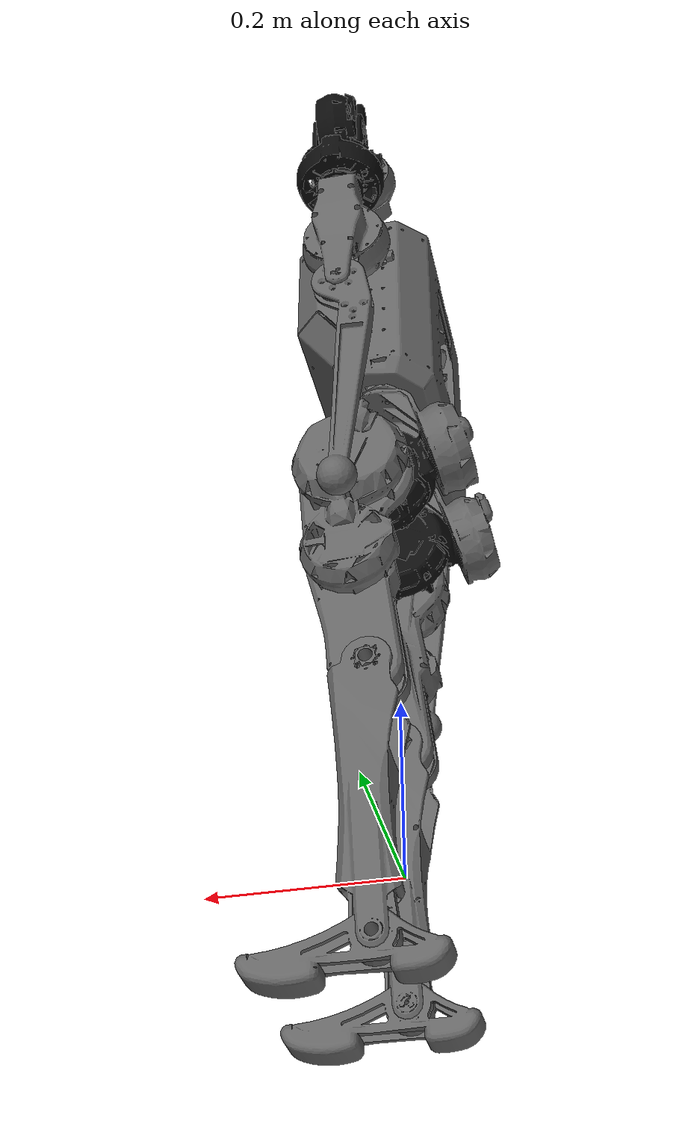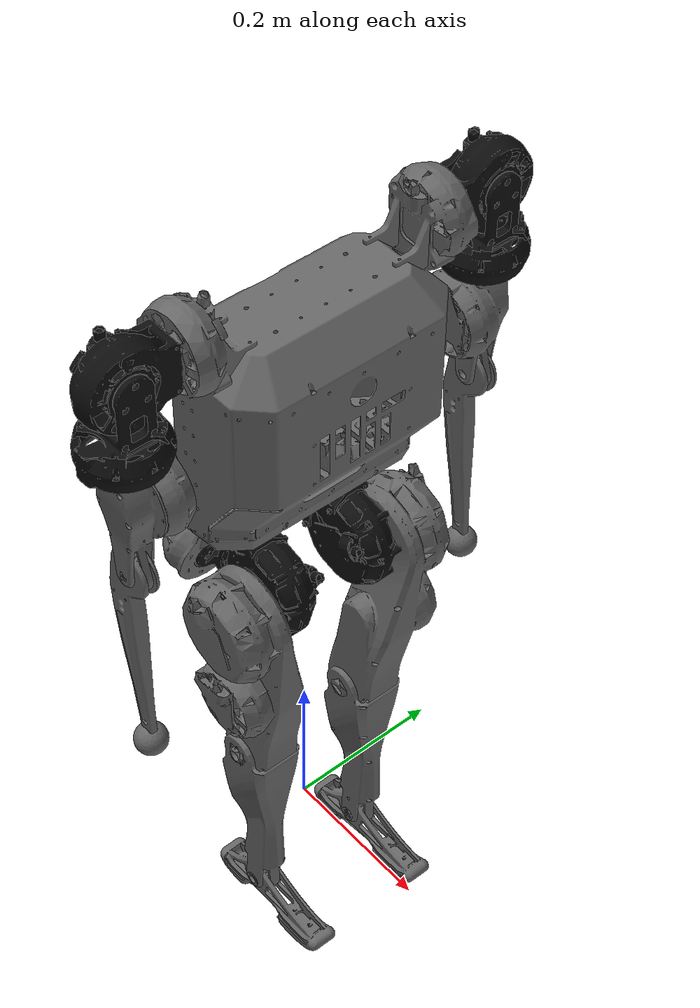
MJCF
<?xml version='1.0' encoding='utf-8'?>
<mujoco model="mit_humanoid">
  <compiler angle="radian" meshdir="assets" autolimits="true" />
  <default>
    <default class="mit_humanoid">
      <default class="visual">
        <geom group="2" type="mesh" density="0" material="aluminium" contype="0" conaffinity="0" />
      </default>
      <default class="collision">
        <geom group="3" rgba=".2 .6 .2 .3" contype="0" conaffinity="1" />
      </default>
    </default>
  </default>
  <asset>
    <material name="aluminium" rgba="0.4 0.4 0.4 1" metallic="0.6" roughness="0.5" />
    <material name="matte_black" rgba="0.05 0.05 0.05 1" metallic="0.3" roughness="1.0" />
    <mesh name="left_foot_scaled" file="left_foot_scaled.stl" />
    <mesh name="left_forearm_scaled" file="left_forearm_scaled.stl" />
    <mesh name="left_hip_abad_scaled" file="left_hip_abad_scaled.stl" />
    <mesh name="left_hip_yaw_scaled" file="left_hip_yaw_scaled.stl" />
    <mesh name="left_leg_lower_scaled" file="left_leg_lower_scaled.stl" />
    <mesh name="left_leg_upper_scaled" file="left_leg_upper_scaled.stl" />
    <mesh name="left_shoulder1_scaled" file="left_shoulder1_scaled.stl" />
    <mesh name="left_shoulder2_scaled" file="left_shoulder2_scaled.stl" />
    <mesh name="left_shoulder3_scaled" file="left_shoulder3_scaled.stl" />
    <mesh name="right_foot_scaled" file="right_foot_scaled.stl" />
    <mesh name="right_hip_abad_scaled" file="right_hip_abad_scaled.stl" />
    <mesh name="right_hip_yaw_scaled" file="right_hip_yaw_scaled.stl" />
    <mesh name="right_leg_lower_scaled" file="right_leg_lower_scaled.stl" />
    <mesh name="right_leg_upper_scaled" file="right_leg_upper_scaled.stl" />
    <mesh name="right_shoulder1_scaled" file="right_shoulder1_scaled.stl" />
    <mesh name="right_shoulder2_scaled" file="right_shoulder2_scaled.stl" />
    <mesh name="right_shoulder3_scaled" file="right_shoulder3_scaled.stl" />
    <mesh name="torso_scaled" file="torso_scaled.stl" />
  </asset>
  <worldbody>
    <body name="base" pos="0 0 0.61" childclass="mit_humanoid">
      <inertial pos="0.009896 0.004771 0.100522" mass="8.52" fullinertia="0.172699 0.105949 0.091906 0.001419 0.004023 -0.001672" />
      <freejoint name="floating_base_joint" />
      <geom name="base_visual" class="visual" mesh="torso_scaled" pos="-0.00565 0 -0.05735" quat="1 0 0 0" />
      <geom name="base_collision" class="collision" pos="0.023 0.0 0.08" quat="1 0 0 0" type="box" size="0.075 0.15 0.175" />
      <body name="right_hip_yaw" pos="-0.00565 -0.082 -0.05735" quat="0.996194694832 0 -0.0871557800056 0">
        <inertial pos="-0.064842 3.6e-05 -0.063090" mass="0.84563" fullinertia="0.0015373 0.0014252 0.0012028 -1.1e-06 0.0005578 -2.4e-06" />
        <joint name="right_hip_yaw_joint" axis="0 0 1" range="-6.28 6.28" />
        <geom name="right_hip_yaw_visual" class="visual" mesh="right_hip_yaw_scaled" pos="0 0 0" quat="1 0 0 0" />
        <body name="right_hip_abad" pos="-0.06435 0 -.07499" quat="0.976296040993 0 0.216439461148 0">
          <inertial pos="0.067232 0.013018 0.0001831" mass="1.20868" fullinertia="0.0017535 0.003338 0.0019927 6.3e-06 -0.000080 1.3e-05" />
          <joint name="right_hip_abad_joint" axis="1 0 0" range="-6.28 6.28" />
          <geom name="right_hip_abad_visual" class="visual" mesh="right_hip_abad_scaled" material="matte_black" pos="0 0 0" quat="1 0 0 0" />
          <body name="right_upper_leg" pos="0.07133 0.002 0.0" quat="0.991444886683 0 -0.130525999979 0">
            <inertial pos="0.0132054 -0.0269864 -0.096021" mass="2.64093" fullinertia="0.0243761 0.0259015 0.0038929 -9.96e-05 0.0006548 -0.0026713" />
            <joint name="right_hip_pitch_joint" axis="0 1 0" range="-6.28 6.28" />
            <geom name="right_upper_leg_visual" class="visual" mesh="right_leg_upper_scaled" pos="0.01283 0 -0.0174" quat="1 0 0 0" />
            <body name="right_lower_leg" pos="0.0 0.0 -0.2666" quat="1 0 0 0">
              <inertial pos="0.00528 -0.0014762 -0.13201" mass="0.35435" fullinertia="0.003051 0.003033 0.0002529 0.0 0.0000873 -3.93e-05" />
              <joint name="right_knee_joint" axis="0 1 0" range="0. 3." />
              <geom name="right_lower_leg_visual" class="visual" mesh="right_leg_lower_scaled" pos="0 0 0" quat="1 0 0 0" />
              <body name="right_foot" pos="0.0 0.0 -0.2785" quat="1 0 0 0">
                <inertial pos="0.022623 0.0 -0.012826" mass="0.280951" fullinertia="0.0000842 0.0007959 0.0007681 0.0 -0.0000488 0.0" />
                <joint name="right_ankle_joint" axis="0 1 0" range="-1.5 1.5" />
                <geom name="right_foot_visual" class="visual" mesh="right_foot_scaled" pos="0 0 0" quat="1 0 0 0" />
                <geom name="right_heel_collision" class="collision" pos="-0.05 0.0 -0.031" type="sphere" size="0.01" />
                <geom name="right_toe_collision" class="collision" pos="0.1 0.0 -0.031" type="sphere" size="0.01" />
                <body name="right_toe" pos="0.1 0 -.041" quat="1 0 0 0" />
                <body name="right_heel" pos="-0.05 0 -.041" quat="1 0 0 0" />
              </body>
            </body>
          </body>
        </body>
      </body>
      <body name="left_hip_yaw" pos="-0.00565 0.082 -0.05735" quat="0.996194694832 0 -0.0871557800056 0">
        <inertial pos="-0.064842 -3.6e-05 -0.063090" mass="0.84563" fullinertia="0.0015373 0.0014252 0.0012028 1.1e-06 0.0005578 2.4e-06" />
        <joint name="left_hip_yaw_joint" axis="0 0 -1" range="-6.28 6.28" />
        <geom name="left_hip_yaw_visual" class="visual" mesh="left_hip_yaw_scaled" pos="0 0 0" quat="1 0 0 0" />
        <body name="left_hip_abad" pos="-0.06435 0 -.07499" quat="0.976296040993 0 0.216439461148 0">
          <inertial pos="0.067232 -0.013018 0.0001831" mass="1.20868" fullinertia="0.0017535 0.003338 0.0019927 -6.3e-06 -0.000080 -1.3e-05" />
          <joint name="left_hip_abad_joint" axis="1 0 0" range="-6.28 6.28" />
          <geom name="left_hip_abad_visual" class="visual" mesh="left_hip_abad_scaled" material="matte_black" pos="0 0 0" quat="1 0 0 0" />
          <body name="left_upper_leg" pos="0.07133 -0.002 0.0" quat="0.991444886683 0 -0.130525999979 0">
            <inertial pos="0.0132054 0.0269864 -0.096021" mass="2.64093" fullinertia="0.0243761 0.0259015 0.0038929 9.96e-05 0.0006548 0.0026713" />
            <joint name="left_hip_pitch_joint" axis="0 1 0" range="-6.28 6.28" />
            <geom name="left_upper_leg_visual" class="visual" mesh="left_leg_upper_scaled" pos="0.01283 0 -0.0174" quat="1 0 0 0" />
            <body name="left_lower_leg" pos="0.0 0.0 -0.2666" quat="1 0 0 0">
              <inertial pos="0.00528 0.0014762 -0.13201" mass="0.35435" fullinertia="0.003051 0.003033 0.0002529 0.0 0.0000873 3.93e-05" />
              <joint name="left_knee_joint" axis="0 1 0" range="0. 3." />
              <geom name="left_lower_leg_visual" class="visual" mesh="left_leg_lower_scaled" pos="0 0 0" quat="1 0 0 0" />
              <body name="left_foot" pos="0.0 0.0 -0.2785" quat="1 0 0 0">
                <inertial pos="0.022623 0.0 -0.012826" mass="0.280951" fullinertia="0.0000842 0.0007959 0.0007681 0.0 -0.0000488 0.0" />
                <joint name="left_ankle_joint" axis="0 1 0" range="-1.5 1.5" />
                <geom name="left_foot_visual" class="visual" mesh="left_foot_scaled" pos="0 0 0" quat="1 0 0 0" />
                <geom name="left_heel_collision" class="collision" pos="-0.05 0.0 -0.031" type="sphere" size="0.01" />
                <geom name="left_toe_collision" class="collision" pos="0.1 0.0 -0.031" type="sphere" size="0.01" />
                <body name="left_toe" pos="0.1 0 -.041" quat="1 0 0 0" />
                <body name="left_heel" pos="-0.05 0 -.041" quat="1 0 0 0" />
              </body>
            </body>
          </body>
        </body>
      </body>
      <body name="right_shoulder" pos="0.01346 -0.17608 0.24657" quat="1 0 0 0">
        <inertial pos="0.009265 -0.052623 -0.0001249" mass="0.788506" fullinertia="0.0013678 0.0007392 0.000884 -2.66e-05 0.0000021 1.2e-06" />
        <joint name="right_arm_pitch" axis="0 1 0" range="-6.28 6.28" />
        <geom name="right_shoulder_visual" class="visual" mesh="right_shoulder1_scaled" material="matte_black" pos="0 0 0" quat="1 0 0 0" />
        <body name="right_shoulder_2" pos="0 -.05760 0" quat="1 0 0 0">
          <inertial pos="0.0006041 -0.0001221 -0.082361" mass="0.80125" fullinertia="0.0011524 0.0011921 0.0012386 -7e-07 0.0000396 -1.4e-06" />
          <joint name="right_shoulder_abad" axis="1 0 0" range="-6.28 6.28" />
          <geom name="right_shoulder_2_visual" class="visual" mesh="right_shoulder2_scaled" material="matte_black" pos="0 0 0" quat="1 0 0 0" />
          <body name="right_upper_arm" pos="0 0 -.10250" quat="1 0 0 0">
            <inertial pos="0.0001703 0.016797 -0.060" mass="0.905588" fullinertia="0.0012713 0.0017477 0.0008191 -1e-06 -0.000008 2.25e-05" />
            <joint name="right_shoulder_yaw" axis="0 0 1" range="-6.28 6.28" />
            <geom name="right_upper_arm_visual" class="visual" mesh="right_shoulder3_scaled" pos="0 0 0" quat="1 0 0 0" />
            <body name="right_lower_arm" pos="0 0 -.15750" quat="1 0 0 0">
              <inertial pos="-0.0059578 -0.000111 -0.0426735" mass="0.34839" fullinertia="0.001570 0.0016167 0.0000619 -2e-07 0.0000335 -3e-06" />
              <joint name="right_elbow" axis="0 1 0" range="-6.28 6.28" />
              <geom name="right_lower_arm_visual" class="visual" mesh="left_forearm_scaled" pos="0 0 0" quat="1 0 0 0" />
            </body>
          </body>
        </body>
      </body>
      <body name="left_shoulder" pos="0.01346 0.17608 0.24657" quat="1 0 0 0">
        <inertial pos="0.009265 0.052623 -0.0001249" mass="0.788506" fullinertia="0.0013678 0.0007392 0.000884 2.66e-05 0.0000021 -1.2e-06" />
        <joint name="left_arm_pitch" axis="0 1 0" range="-6.28 6.28" />
        <geom name="left_shoulder_visual" class="visual" mesh="left_shoulder1_scaled" material="matte_black" pos="0 0 0" quat="1 0 0 0" />
        <body name="left_shoulder_2" pos="0 .05760 0" quat="1 0 0 0">
          <inertial pos="0.0006041 0.0001221 -0.082361" mass="0.80125" fullinertia="0.0011524 0.0011921 0.0012386 7e-07 0.0000396 1.4e-06" />
          <joint name="left_shoulder_abad" axis="1 0 0" range="-6.28 6.28" />
          <geom name="left_shoulder_2_visual" class="visual" mesh="left_shoulder2_scaled" material="matte_black" pos="0 0 0" quat="1 0 0 0" />
          <body name="left_upper_arm" pos="0 0 -.10250" quat="1 0 0 0">
            <inertial pos="0.0001703 -0.016797 -0.060" mass="0.905588" fullinertia="0.0012713 0.0017477 0.0008191 1e-06 -0.000008 -2.25e-05" />
            <joint name="left_shoulder_yaw" axis="0 0 -1" range="-6.28 6.28" />
            <geom name="left_upper_arm_visual" class="visual" mesh="left_shoulder3_scaled" pos="0 0 0" quat="1 0 0 0" />
            <body name="left_lower_arm" pos="0 0 -.15750" quat="1 0 0 0">
              <inertial pos="-0.0059578 0.000111 -0.0426735" mass="0.34839" fullinertia="0.001570 0.0016167 0.0000619 2e-07 0.0000335 3e-06" />
              <joint name="left_elbow" axis="0 1 0" range="-6.28 6.28" />
              <geom name="left_lower_arm_visual" class="visual" mesh="left_forearm_scaled" pos="0 0 0" quat="1 0 0 0" />
            </body>
          </body>
        </body>
      </body>
    </body>
  </worldbody>
</mujoco>
